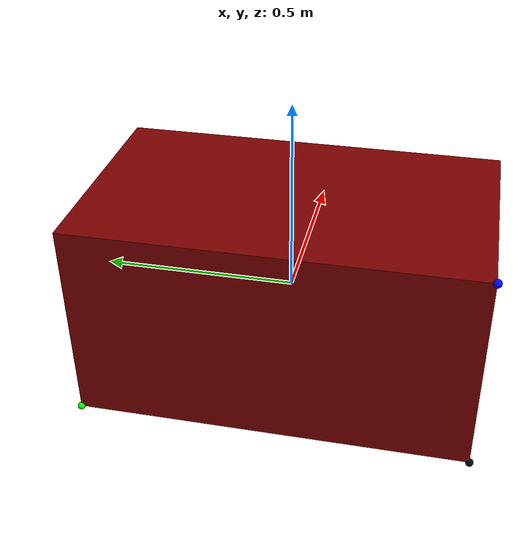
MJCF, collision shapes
<mujoco model="model">
  <asset>
    <texture file="visuals/image0.png" name="tex-model" type="2d" />
    <texture type="2d" name="image0" file="visuals/image0.png" />
    <texture type="2d" name="image3" file="visuals/image3.png" />
    <material name="model" reflectance="0.5" texrepeat="1 1" texture="tex-model" texuniform="false" />
    <material name="Material_38" texture="image0" specular="0.5" shininess="0.25" />
    <material name="Material_39" texture="image3" specular="0.5" shininess="0.25" />
    <mesh file="visuals/model_0.obj" name="model_0_vis" scale="1 1 1" />
    <mesh file="visuals/model_1.obj" name="model_1_vis" scale="1 1 1" />
  </asset>
  <default>
    <default class="visual">
      <geom conaffinity="0" contype="0" group="1" type="mesh" />
    </default>
    <default class="collision">
      <geom group="0" rgba="0.5 0 0 0.5" />
    </default>
  </default>
  <worldbody>
    <body>
      <!-- exterior bounding box points -->
      <site rgba="0 0 0 1" size="0.01" pos="-0.28879973832251515 -0.5 -0.2642505620571949"
        name="ext_p0" />
      <site rgba="1 0 0 1" size="0.01" pos="0.28879973832251515 -0.5 -0.2642505620571949"
        name="ext_px" />
      <site rgba="0 1 0 1" size="0.01" pos="-0.28879973832251515 0.5 -0.2642505620571949"
        name="ext_py" />
      <site rgba="0 0 1 1" size="0.01" pos="-0.28879973832251515 -0.5 0.2642505620571949"
        name="ext_pz" />
      <!-- interior bounding box points -->
      <body name="object">
        <geom solimp="0.998 0.998 0.001" solref="0.001 1" density="100" friction="0.95 0.3 0.1"
          type="mesh" mesh="model_0_vis" material="Material_39" class="visual" />
        <geom solimp="0.998 0.998 0.001" solref="0.001 1" density="100" friction="0.95 0.3 0.1"
          type="mesh" mesh="model_1_vis" material="Material_38" class="visual" />
        <geom class="collision" type="box" pos="0 0 0"
          size="0.28879973832251515 0.5 0.2642505620571949" />
      </body>
    </body>
  </worldbody>
</mujoco>
